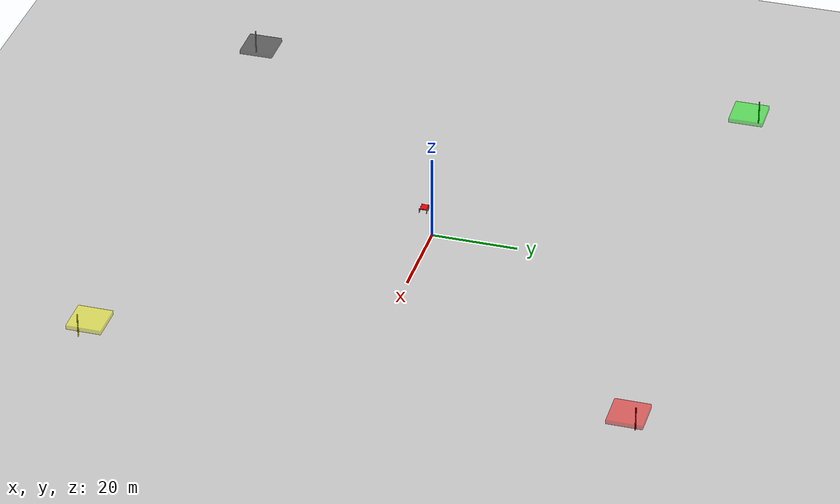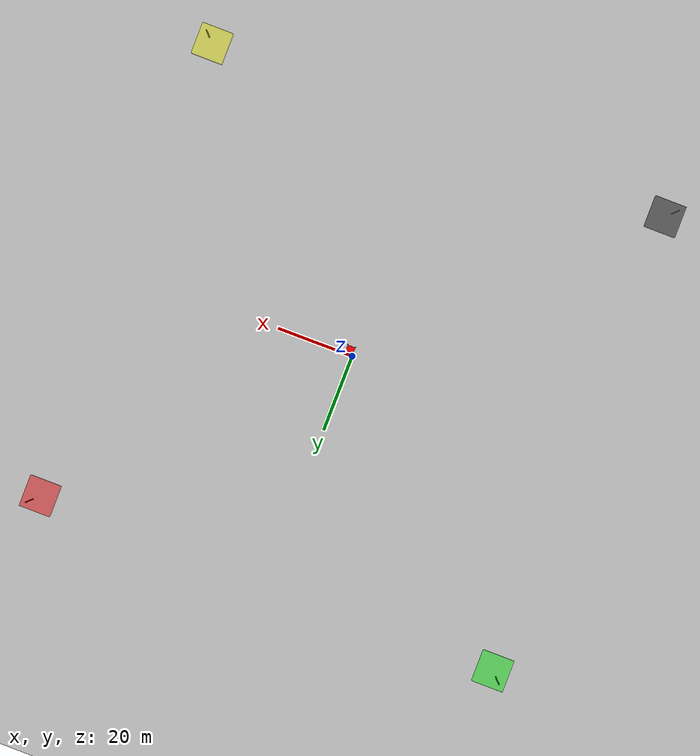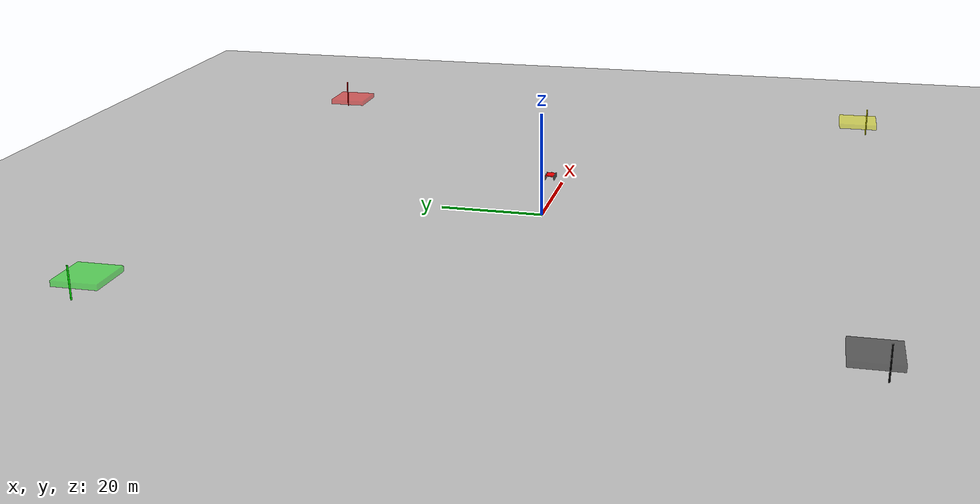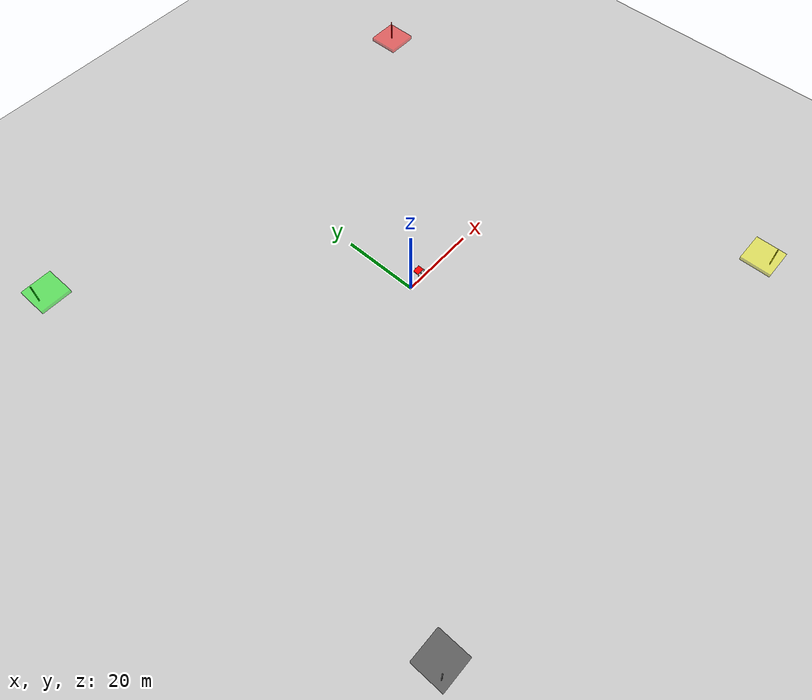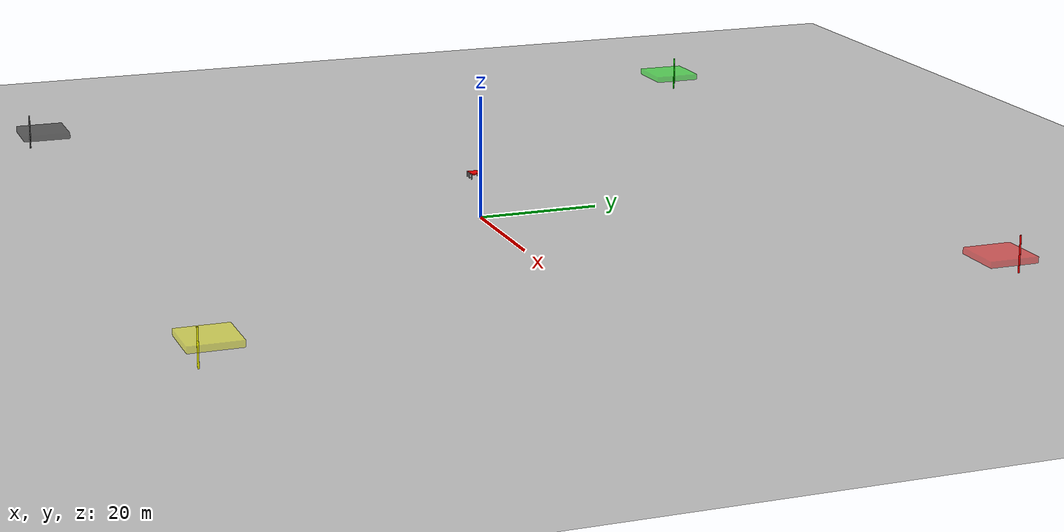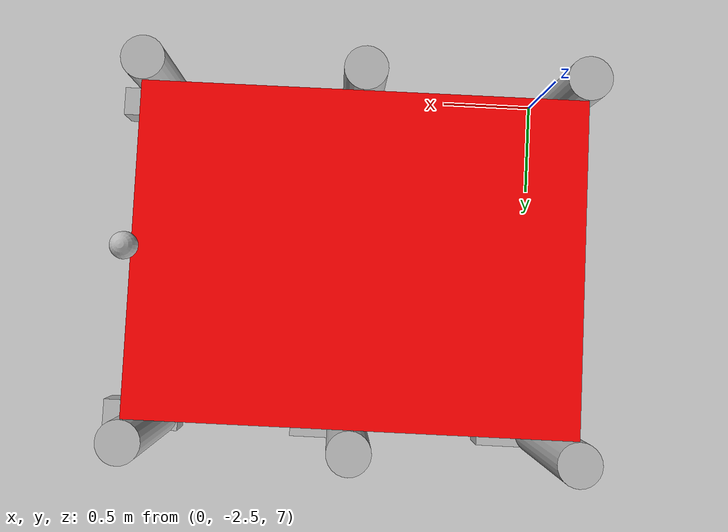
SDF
<sdf version="1.4">
 <world name="default">
  <include><uri>model://ground_plane</uri></include>
  <include><uri>model://sun</uri></include>
  <model name="NEend_pole">
   <pose>62 62 5 0 0 0</pose>
   <link name="unit_cylinder::link">
    <visual name="visual">
     <geometry><cylinder><radius>0.134805</radius><length>5.81016</length></cylinder></geometry>
     <material><ambient>1 0 0 1</ambient></material>
     <transparency>-0</transparency>
    </visual>
    <collision name="collision">
     <geometry><cylinder><radius>0.034805</radius><length>1.81016</length></cylinder></geometry>
    </collision>
   </link>
   <static>1</static>
  </model>
  <model name="NE_goal_region">
   <pose>60 60 4.5 0 0 0</pose>
   <link name="unit_cylinder::link">
    <visual name="visual">
     <geometry><box><size>8 8 1</size></box></geometry>
     <transparency>.5</transparency>
     <material><ambient>1 0 0 1</ambient></material>
     <transparency>-0</transparency>
    </visual>
    <collision name="collision"><geometry><box><size>8 8 .9</size></box></geometry></collision>
   </link>
   <static>1</static>
  </model>
  <model name="SEend_pole">
   <pose>-62 62 6 0 0 0</pose>
   <link name="unit_cylinder::link">
    <visual name="visual">
     <geometry><cylinder><radius>0.134805</radius><length>5.81016</length></cylinder></geometry>
     <material><ambient>0 1 0 1</ambient></material>
     <transparency>-0</transparency>
    </visual>
    <collision name="collision">
     <geometry><cylinder><radius>0.034805</radius><length>1.81016</length></cylinder></geometry>
    </collision>
   </link>
   <static>1</static>
  </model>
  <model name="SE_goal_region">
   <pose>-60 60 6.5 0 0 0</pose>
   <link name="unit_cylinder::link">
    <visual name="visual">
     <geometry><box><size>8 8 1</size></box></geometry>
     <transparency>.5</transparency>
     <material><ambient>0 1 0 1</ambient></material>
     <transparency>-0</transparency>
    </visual>
    <collision name="collision"><geometry><box><size>8 8 1</size></box></geometry></collision>
   </link>
   <static>1</static>
  </model>
  <model name="NWend_pole">
   <pose>62 -62 5 0 0 0</pose>
   <link name="unit_cylinder::link">
    <visual name="visual">
     <geometry><cylinder><radius>0.134805</radius><length>5.81016</length></cylinder></geometry>
     <material><ambient>1 1 0 1</ambient></material>
     <transparency>-0</transparency>
    </visual>
    <collision name="collision">
     <geometry><cylinder><radius>0.034805</radius><length>1.81016</length></cylinder></geometry>
    </collision>
   </link>
   <static>1</static>
  </model>
  <model name="NW_goal_region">
   <pose>60 -60 5.5 0 0 0</pose>
   <link name="unit_cylinder::link">
    <visual name="visual">
     <geometry><box><size>8 8 1</size></box></geometry>
     <transparency>.5</transparency>
     <material><ambient>1 1 0 1</ambient></material>
     <transparency>-0</transparency>
    </visual>
    <collision name="collision"><geometry><box><size>8 8 1</size></box></geometry></collision>
   </link>
   <static>1</static>
  </model>
  <model name="SWend_pole">
   <pose>-62 -62 5 0 0 0</pose>
   <link name="unit_cylinder::link">
    <visual name="visual">
     <geometry><cylinder><radius>0.134805</radius><length>5.81016</length></cylinder></geometry>
     <material><ambient>0 0 0 1</ambient></material>
     <transparency>-0</transparency>
    </visual>
    <collision name="collision">
     <geometry><cylinder><radius>0.134805</radius><length>1.81016</length></cylinder></geometry>
    </collision>
   </link>
   <static>1</static>
  </model>
  <model name="SW_goal_region">
   <pose>-60 -60 5.25 0 0 0</pose>
   <link name="unit_cylinder::link">
    <visual name="visual">
     <geometry><box><size>8 8 1</size></box></geometry>
     <transparency>.5</transparency>
     <material><ambient>0 0 0 1</ambient></material>
     <transparency>-0</transparency>
    </visual>
    <collision name="collision"><geometry><box><size>8 8 1</size></box></geometry></collision>
   </link>
   <static>1</static>
  </model>
  <model name="car">
   <pose>1 -1.5 7.5 0 0 0</pose>
   <link name="chassis">
    <pose>0 0 .4 0 0 0</pose>
    <inertial>
     <inertia><ixx>1</ixx><ixy>0</ixy><ixz>0</ixz><iyy>1</iyy><iyz>0</iyz><izz>1</izz></inertia>
     <mass>10.0</mass>
    </inertial>
    <collision name="collision"><geometry><box><size>2 1.5 .2</size></box></geometry></collision>
    <visual name="visual">
     <geometry><box><size>2 1.5 .2</size></box></geometry>
     <material>
      <ambient>1 0 0 1</ambient>
      <shader type="vertex"><normal_map>__default__</normal_map></shader>
     </material>
    </visual>
   </link>
   <link name="front_indicator">
    <pose>1 0 0.6 0 0 0</pose>
    <geometry><sphere><radius>.06</radius></sphere></geometry>
    <visual name="visual">
     <geometry><sphere><radius>.06</radius></sphere></geometry>
     <material>Gazebo/Blue</material>
    </visual>
   </link>
   <link name="left_front_wheel">
    <pose>1 .85 .16 0 0 3.1414</pose>
    <inertial>
     <inertia><ixx>1</ixx><ixy>0</ixy><ixz>0</ixz><iyy>1</iyy><iyz>0</iyz><izz>1</izz></inertia>
     <mass>2.0</mass>
    </inertial>
    <collision name="collision">
     <geometry><cylinder><radius>.1</radius><length>.7</length></cylinder></geometry>
    </collision>
    <visual name="visual">
     <geometry><cylinder><radius>.1</radius><length>.7</length></cylinder></geometry>
    </visual>
   </link>
   <link name="left_front_foot">
    <pose>1.1 .85 -.27 0 0 3.1414</pose>
    <inertial>
     <inertia><ixx>1</ixx><ixy>0</ixy><ixz>0</ixz><iyy>1</iyy><iyz>0</iyz><izz>1</izz></inertia>
     <mass>2.0</mass>
    </inertial>
    <collision name="collision"><geometry><box><size>.4 .15 .15</size></box></geometry></collision>
    <visual name="visual"><geometry><box><size>.4 .15 .15</size></box></geometry></visual>
   </link>
   <link name="right_front_wheel">
    <pose>1 -.85 .16 0 0 3.1414</pose>
    <inertial>
     <inertia><ixx>1</ixx><ixy>0</ixy><ixz>0</ixz><iyy>1</iyy><iyz>0</iyz><izz>1</izz></inertia>
     <mass>2.0</mass>
    </inertial>
    <collision name="collision">
     <geometry><cylinder><radius>.1</radius><length>.7</length></cylinder></geometry>
    </collision>
    <visual name="visual">
     <geometry><cylinder><radius>.1</radius><length>.7</length></cylinder></geometry>
    </visual>
   </link>
   <link name="right_front_foot">
    <pose>1.1 -.85 -.29 0 0 3.1414</pose>
    <inertial>
     <inertia><ixx>1</ixx><ixy>0</ixy><ixz>0</ixz><iyy>1</iyy><iyz>0</iyz><izz>1</izz></inertia>
     <mass>2.0</mass>
    </inertial>
    <collision name="collision"><geometry><box><size>.4 .15 .15</size></box></geometry></collision>
    <visual name="visual"><geometry><box><size>.4 .15 .15</size></box></geometry></visual>
   </link>
   <link name="left_middle_wheel">
    <pose>0 .85 .16 0 0 3.1414</pose>
    <inertial>
     <inertia><ixx>1</ixx><ixy>0</ixy><ixz>0</ixz><iyy>1</iyy><iyz>0</iyz><izz>1</izz></inertia>
     <mass>2.0</mass>
    </inertial>
    <collision name="collision">
     <geometry><cylinder><radius>.1</radius><length>.7</length></cylinder></geometry>
    </collision>
    <visual name="visual">
     <geometry><cylinder><radius>.1</radius><length>.7</length></cylinder></geometry>
    </visual>
   </link>
   <link name="left_middle_foot">
    <pose>.1 .85 -.29 0 0 3.1414</pose>
    <inertial>
     <inertia><ixx>1</ixx><ixy>0</ixy><ixz>0</ixz><iyy>1</iyy><iyz>0</iyz><izz>1</izz></inertia>
     <mass>2.0</mass>
    </inertial>
    <collision name="collision"><geometry><box><size>.4 .15 .15</size></box></geometry></collision>
    <visual name="visual"><geometry><box><size>.4 .15 .15</size></box></geometry></visual>
   </link>
   <link name="right_middle_wheel">
    <pose>0 -.85 .16 0 0 3.1414</pose>
    <inertial>
     <inertia><ixx>1</ixx><ixy>0</ixy><ixz>0</ixz><iyy>1</iyy><iyz>0</iyz><izz>1</izz></inertia>
     <mass>2.0</mass>
    </inertial>
    <collision name="collision">
     <geometry><cylinder><radius>.1</radius><length>.7</length></cylinder></geometry>
    </collision>
    <visual name="visual">
     <geometry><cylinder><radius>.1</radius><length>.7</length></cylinder></geometry>
    </visual>
   </link>
   <link name="right_middle_foot">
    <pose>.1 -.85 -.29 0 0 3.1414</pose>
    <inertial>
     <inertia><ixx>1</ixx><ixy>0</ixy><ixz>0</ixz><iyy>1</iyy><iyz>0</iyz><izz>1</izz></inertia>
     <mass>2.0</mass>
    </inertial>
    <collision name="collision"><geometry><box><size>.4 .15 .15</size></box></geometry></collision>
    <visual name="visual"><geometry><box><size>.4 .15 .15</size></box></geometry></visual>
   </link>
   <link name="left_back_wheel">
    <pose>-1 .85 .16 0 0 3.1414</pose>
    <inertial>
     <inertia><ixx>1</ixx><ixy>0</ixy><ixz>0</ixz><iyy>1</iyy><iyz>0</iyz><izz>1</izz></inertia>
     <mass>2.0</mass>
    </inertial>
    <collision name="collision">
     <geometry><cylinder><radius>.1</radius><length>.7</length></cylinder></geometry>
    </collision>
    <visual name="visual">
     <geometry><cylinder><radius>.1</radius><length>.7</length></cylinder></geometry>
    </visual>
   </link>
   <link name="left_back_foot">
    <pose>-.9 .85 -.29 0 0 3.1414</pose>
    <inertial>
     <inertia><ixx>1</ixx><ixy>0</ixy><ixz>0</ixz><iyy>1</iyy><iyz>0</iyz><izz>1</izz></inertia>
     <mass>2.0</mass>
    </inertial>
    <collision name="collision"><geometry><box><size>.4 .15 .15</size></box></geometry></collision>
    <visual name="visual"><geometry><box><size>.4 .15 .15</size></box></geometry></visual>
   </link>
   <link name="right_back_wheel">
    <pose>-1 -.85 .16 0 0 3.1414</pose>
    <inertial>
     <inertia><ixx>1</ixx><ixy>0</ixy><ixz>0</ixz><iyy>1</iyy><iyz>0</iyz><izz>1</izz></inertia>
     <mass>2.0</mass>
    </inertial>
    <collision name="collision">
     <geometry><cylinder><radius>.1</radius><length>.7</length></cylinder></geometry>
    </collision>
    <visual name="visual">
     <geometry><cylinder><radius>.1</radius><length>.7</length></cylinder></geometry>
    </visual>
   </link>
   <link name="right_back_foot">
    <pose>-.9 -.85 -.29 0 0 3.1414</pose>
    <inertial>
     <inertia><ixx>1</ixx><ixy>0</ixy><ixz>0</ixz><iyy>1</iyy><iyz>0</iyz><izz>1</izz></inertia>
     <mass>2.0</mass>
    </inertial>
    <collision name="collision"><geometry><box><size>.4 .15 .15</size></box></geometry></collision>
    <visual name="visual"><geometry><box><size>.4 .15 .15</size></box></geometry></visual>
   </link>
   <joint type="revolute" name="left_front_wheel_hinge">
    <pose>0 0 .1 0 0 0</pose>
    <child>left_front_wheel</child>
    <parent>chassis</parent>
    <axis><xyz>0 1 0</xyz></axis>
   </joint>
   <joint type="revolute" name="right_back_wheel_hinge">
    <pose>0 0 .1 0 0 0</pose>
    <child>right_back_wheel</child>
    <parent>chassis</parent>
    <axis><xyz>0 1 0</xyz></axis>
   </joint>
   <joint type="revolute" name="left_middle_wheel_hinge">
    <pose>0 0 .1 0 0 0</pose>
    <child>left_middle_wheel</child>
    <parent>chassis</parent>
    <axis><xyz>0 1 0</xyz></axis>
   </joint>
   <joint type="revolute" name="right_middle_wheel_hinge">
    <pose>0 0 .1 0 0 0</pose>
    <child>right_middle_wheel</child>
    <parent>chassis</parent>
    <axis><xyz>0 1 0</xyz></axis>
   </joint>
   <joint type="revolute" name="left_back_wheel_hinge">
    <pose>0 0 .1 0 0 0</pose>
    <child>left_back_wheel</child>
    <parent>chassis</parent>
    <axis><xyz>0 1 0</xyz></axis>
   </joint>
   <joint type="revolute" name="right_front_wheel_hinge">
    <pose>0 0 .1 0 0 0</pose>
    <child>right_front_wheel</child>
    <parent>chassis</parent>
    <axis><xyz>0 1 0</xyz></axis>
   </joint>
   <joint type="fixed" name="indicator_joint"><child>front_indicator</child><parent>chassis</parent></joint>
   <joint type="fixed" name="rf_foot_joint">
    <child>right_front_foot</child>
    <parent>right_front_wheel</parent>
   </joint>
   <joint type="fixed" name="rm_foot_joint">
    <child>right_middle_foot</child>
    <parent>right_middle_wheel</parent>
   </joint>
   <joint type="fixed" name="lm_foot_joint">
    <child>left_middle_foot</child>
    <parent>left_middle_wheel</parent>
   </joint>
   <joint type="fixed" name="lb_foot_joint"><child>left_back_foot</child><parent>left_back_wheel</parent></joint>
   <joint type="fixed" name="rb_foot_joint">
    <child>right_back_foot</child>
    <parent>right_back_wheel</parent>
   </joint>
   <joint type="fixed" name="lf_foot_joint">
    <child>left_front_foot</child>
    <parent>left_front_wheel</parent>
   </joint>
   <plugin name="wheeledRobot" filename="libwheeledRobot.so"/>
  </model>
 </world>
</sdf>
